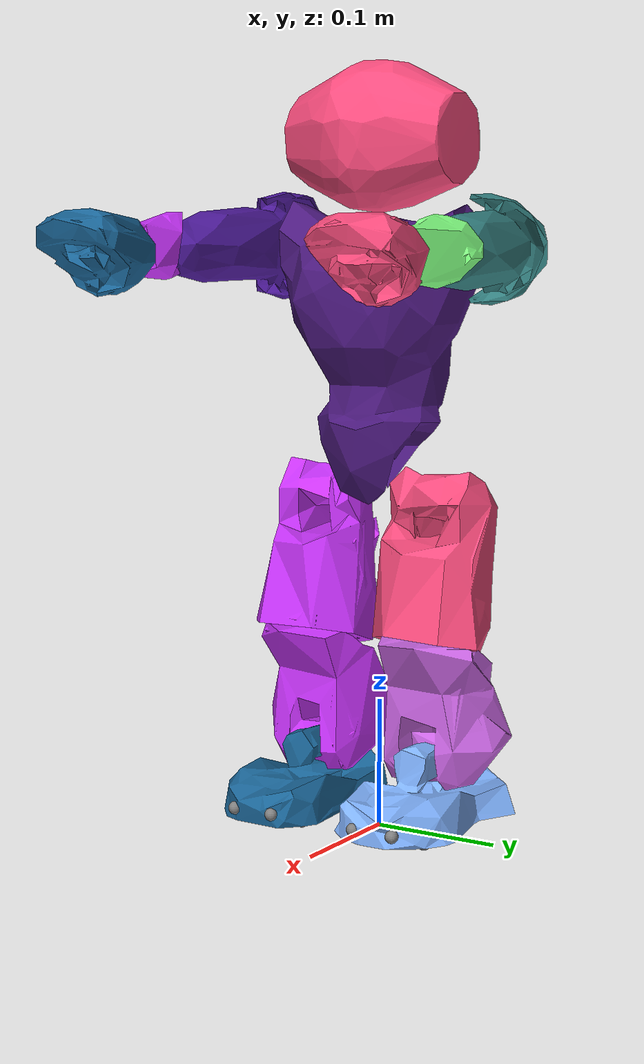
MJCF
<mujoco model="NaoH25V50">
  <compiler angle="radian" meshdir="meshes/"/>

  <!-- https://github.com/HULKs/hulk/blob/main/webots/protos/NAO.proto  Could be useful later -->

<default>
    <light castshadow="false" diffuse="1 1 1"/>
    <joint damping="1" armature="0.1"/>

    <default class="collision_1">
      <geom rgba="1 0 0 0.5" margin="0.000" contype="2" conaffinity="1"/>
    </default>

    <default class="collision_2">
      <geom rgba="1 0 0 0.5" margin="0.000" contype="4" conaffinity="1"/>
    </default>

    <default class="collision_3">
      <geom rgba="1 0 0 0.5" margin="0.000" contype="8" conaffinity="1"/>
    </default>

    <default class="collision_4">
      <geom rgba="1 0 0 0.5" margin="0.000" contype="16" conaffinity="1"/>
    </default>

    <default class="visual">
      <geom rgba="0 0 1 0.5" margin="0.000" contype="0" conaffinity="0"/>
    </default>

</default>

  <asset>
    <mesh name="HeadYaw" file="HeadYaw.obj" scale="0.1 0.1 0.1"/>
    <mesh name="HeadYaw_0.10" file="HeadYaw_0.10.stl" scale="0.1 0.1 0.1"/>

    <mesh name="HeadPitch" file="HeadPitch.obj" scale="0.1 0.1 0.1"/>
    <mesh name="HeadPitch_0.10" file="HeadPitch_0.10.stl" scale="0.1 0.1 0.1"/>

    <mesh name="LHipYawPitch" file="LHipYawPitch.obj" scale="0.1 0.1 0.1"/>
    <mesh name="LHipYawPitch_0.10" file="LHipYawPitch_0.10.stl" scale="0.1 0.1 0.1"/>

    <mesh name="LHipRoll" file="LHipRoll.obj" scale="0.1 0.1 0.1"/>
    <mesh name="LHipRoll_0.10" file="LHipRoll_0.10.stl" scale="0.1 0.1 0.1"/>

    <mesh name="LHipPitch" file="LHipPitch.obj" scale="0.1 0.1 0.1"/>
    <mesh name="LHipPitch_0.10" file="LHipPitch_0.10.stl" scale="0.1 0.1 0.1"/>

    <mesh name="LKneePitch" file="LKneePitch.obj" scale="0.1 0.1 0.1"/>
    <mesh name="LKneePitch_0.10" file="LKneePitch_0.10.stl" scale="0.1 0.1 0.1"/>

    <mesh name="LAnklePitch" file="LAnklePitch.obj" scale="0.1 0.1 0.1"/>
    <mesh name="LAnklePitch_0.10" file="LAnklePitch_0.10.stl" scale="0.1 0.1 0.1"/>

    <mesh name="LAnkleRoll" file="LAnkleRoll.obj" scale="0.1 0.1 0.1"/>
    <mesh name="LAnkleRoll_0.10" file="LAnkleRoll_0.10.stl" scale="0.1 0.1 0.1"/>

    <mesh name="RHipYawPitch" file="RHipYawPitch.obj" scale="0.1 0.1 0.1"/>
    <mesh name="RHipYawPitch_0.10" file="RHipYawPitch_0.10.stl" scale="0.1 0.1 0.1"/>

    <mesh name="RHipRoll" file="RHipRoll.obj" scale="0.1 0.1 0.1"/>
    <mesh name="RHipRoll_0.10" file="RHipRoll_0.10.stl" scale="0.1 0.1 0.1"/>

    <mesh name="RHipPitch" file="RHipPitch.obj" scale="0.1 0.1 0.1"/>
    <mesh name="RHipPitch_0.10" file="RHipPitch_0.10.stl" scale="0.1 0.1 0.1"/>

    <mesh name="RKneePitch" file="RKneePitch.obj" scale="0.1 0.1 0.1"/>
    <mesh name="RKneePitch_0.10" file="RKneePitch_0.10.stl" scale="0.1 0.1 0.1"/>

    <mesh name="RAnklePitch" file="RAnklePitch.obj" scale="0.1 0.1 0.1"/>
    <mesh name="RAnklePitch_0.10" file="RAnklePitch_0.10.stl" scale="0.1 0.1 0.1"/>

    <mesh name="RAnkleRoll" file="RAnkleRoll.obj" scale="0.1 0.1 0.1"/>
    <mesh name="RAnkleRoll_0.10" file="RAnkleRoll_0.10.stl" scale="0.1 0.1 0.1"/>

    <mesh name="Torso" file="Torso.obj" scale="0.1 0.1 0.1"/>
    <mesh name="Torso_0.10" file="Torso_0.10.stl" scale="0.1 0.1 0.1"/>

    <mesh name="LShoulderPitch" file="LShoulderPitch.obj" scale="0.1 0.1 0.1"/>
    <mesh name="LShoulderPitch_0.10" file="LShoulderPitch_0.10.stl" scale="0.1 0.1 0.1"/>

    <mesh name="LShoulderRoll" file="LShoulderRoll.obj" scale="0.1 0.1 0.1"/>
    <mesh name="LShoulderRoll_0.10" file="LShoulderRoll_0.10.stl" scale="0.1 0.1 0.1"/>

    <mesh name="LElbowRoll" file="LElbowRoll.obj" scale="0.1 0.1 0.1"/>
    <mesh name="LElbowRoll_0.10" file="LElbowRoll_0.10.stl" scale="0.1 0.1 0.1"/>

    <mesh name="LWristYaw" file="LWristYaw.obj" scale="0.1 0.1 0.1"/>
    <mesh name="LWristYaw_0.10" file="LWristYaw_0.10.stl" scale="0.1 0.1 0.1"/>

    <mesh name="RShoulderPitch" file="RShoulderPitch.obj" scale="0.1 0.1 0.1"/>
    <mesh name="RShoulderPitch_0.10" file="RShoulderPitch_0.10.stl" scale="0.1 0.1 0.1"/>

    <mesh name="RShoulderRoll" file="RShoulderRoll.obj" scale="0.1 0.1 0.1"/>
    <mesh name="RShoulderRoll_0.10" file="RShoulderRoll_0.10.stl" scale="0.1 0.1 0.1"/>

    <mesh name="RElbowRoll" file="RElbowRoll.obj" scale="0.1 0.1 0.1"/>
    <mesh name="RElbowRoll_0.10" file="RElbowRoll_0.10.stl" scale="0.1 0.1 0.1"/>

    <mesh name="RWristYaw" file="RWristYaw.obj" scale="0.1 0.1 0.1"/>
    <mesh name="RWristYaw_0.10" file="RWristYaw_0.10.stl" scale="0.1 0.1 0.1"/>

    <mesh name="RFinger13" file="RFinger13.obj" scale="0.1 0.1 0.1"/>
    <mesh name="RFinger13_0.10" file="RFinger13_0.10.stl" scale="0.1 0.1 0.1"/>

    <mesh name="RFinger12" file="RFinger12.obj" scale="0.1 0.1 0.1"/>
    <mesh name="RFinger12_0.10" file="RFinger12_0.10.stl" scale="0.1 0.1 0.1"/>

    <mesh name="LFinger21" file="LFinger21.obj" scale="0.1 0.1 0.1"/>
    <mesh name="LFinger21_0.10" file="LFinger21_0.10.stl" scale="0.1 0.1 0.1"/>

    <mesh name="LFinger13" file="LFinger13.obj" scale="0.1 0.1 0.1"/>
    <mesh name="LFinger13_0.10" file="LFinger13_0.10.stl" scale="0.1 0.1 0.1"/>

    <mesh name="LFinger11" file="LFinger11.obj" scale="0.1 0.1 0.1"/>
    <mesh name="LFinger11_0.10" file="LFinger11_0.10.stl" scale="0.1 0.1 0.1"/>

    <mesh name="RFinger22" file="RFinger22.obj" scale="0.1 0.1 0.1"/>
    <mesh name="RFinger22_0.10" file="RFinger22_0.10.stl" scale="0.1 0.1 0.1"/>

    <mesh name="LFinger22" file="LFinger22.obj" scale="0.1 0.1 0.1"/>
    <mesh name="LFinger22_0.10" file="LFinger22_0.10.stl" scale="0.1 0.1 0.1"/>

    <mesh name="RFinger21" file="RFinger21.obj" scale="0.1 0.1 0.1"/>
    <mesh name="RFinger21_0.10" file="RFinger21_0.10.stl" scale="0.1 0.1 0.1"/>

    <mesh name="LFinger12" file="LFinger12.obj" scale="0.1 0.1 0.1"/>
    <mesh name="LFinger12_0.10" file="LFinger12_0.10.stl" scale="0.1 0.1 0.1"/>

    <mesh name="RFinger23" file="RFinger23.obj" scale="0.1 0.1 0.1"/>
    <mesh name="RFinger23_0.10" file="RFinger23_0.10.stl" scale="0.1 0.1 0.1"/>

    <mesh name="RFinger11" file="RFinger11.obj" scale="0.1 0.1 0.1"/>
    <mesh name="RFinger11_0.10" file="RFinger11_0.10.stl" scale="0.1 0.1 0.1"/>

    <mesh name="LFinger23" file="LFinger23.obj" scale="0.1 0.1 0.1"/>
    <mesh name="LFinger23_0.10" file="LFinger23_0.10.stl" scale="0.1 0.1 0.1"/>

    <mesh name="LThumb1" file="LThumb1.obj" scale="0.1 0.1 0.1"/>
    <mesh name="LThumb1_0.10" file="LThumb1_0.10.stl" scale="0.1 0.1 0.1"/>

    <mesh name="RThumb1" file="RThumb1.obj" scale="0.1 0.1 0.1"/>
    <mesh name="RThumb1_0.10" file="RThumb1_0.10.stl" scale="0.1 0.1 0.1"/>

    <mesh name="RThumb2" file="RThumb2.obj" scale="0.1 0.1 0.1"/>
    <mesh name="RThumb2_0.10" file="RThumb2_0.10.stl" scale="0.1 0.1 0.1"/>

    <mesh name="LThumb2" file="LThumb2.obj" scale="0.1 0.1 0.1"/>
    <mesh name="LThumb2_0.10" file="LThumb2_0.10.stl" scale="0.1 0.1 0.1"/>
  </asset>

  <worldbody>
    <light directional="true" diffuse=".8 .8 .8" pos="0 0 10" dir="0 0 -10"/>
    <camera name="side" pos="0 -1 1" xyaxes="1 0 0 0 1 2" mode="trackcom"/>

    <body name="torso" pos="0 0 0.35">
      <site name="accelerometer_site" pos="-0.008 0.00606 0.027"/>
      <site name="gyrometer_site" pos="-0.008 0.006 0.029"/>
      <inertial pos="-0.00413 0 0.04342" mass="1.04956" diaginertia="0.00308361 0.0028835 0.0015924"/>
      <joint type="free"/>
      <geom type="mesh" rgba="0.3 0.1 0.5 1" mesh="Torso_0.10" class="collision_1"/>
      <body name="Neck" pos="0 0 0.1265">
        <inertial pos="-1e-05 0 -0.02742" quat="0.70765 -0.00173495 0.00151894 0.706559" mass="0.07842" diaginertia="1.70396e-05 1.60324e-05 5.53348e-06"/>
        <joint name="HeadYaw" pos="0 0 0" axis="0 0 1" range="-2.08567 2.08567" actuatorfrcrange="-1.547 1.547"/>
        <body name="Head">
          <inertial pos="-0.00112 0 0.05258" quat="0.463877 0.585354 -0.492966 0.446277" mass="0.60533" diaginertia="0.000990592 0.000957952 0.000811033"/>
          <joint name="HeadPitch" pos="0 0 0" axis="0 1 0" range="-0.671952 0.514872" actuatorfrcrange="-1.532 1.532"/>
          <geom type="mesh" rgba="1 0.3 0.5 1" mesh="HeadPitch_0.10" class="collision_2"/>

          <camera name="TopCamera" mode="fixed" pos="0 0 0.1" fovy="72.6"/>
          <camera name="BottomCamera" mode="fixed" pos="0 0 -0.1" fovy="72.6"/>
        </body>
      </body>
      <body name="LPelvis" pos="0 0.05 -0.085">
        <inertial pos="-0.00781 -0.01114 0.02661" quat="0.232303 0.656505 0.182148 0.69416" mass="0.06981" diaginertia="5.16414e-05 4.58792e-05 2.32239e-05"/>
        <joint name="LHipYawPitch" pos="0 0 0" axis="0 0.707107 -0.707107" range="-1.14529 0.740718" actuatorfrcrange="-3.348 3.348"/>
        <body name="LHip">
          <inertial pos="-0.01549 0.00029 -0.00515" quat="0.453959 0.527953 0.574067 0.430853" mass="0.14053" diaginertia="6.08587e-05 5.59269e-05 2.22526e-05"/>
          <joint name="LHipRoll" pos="0 0 0" axis="1 0 0" range="-0.379435 0.79046" actuatorfrcrange="-3.348 3.348"/>
          <body name="LThigh">
            <inertial pos="0.00138 0.00221 -0.05373" quat="0.992078 -0.0228023 -0.123519 -0.00190301" mass="0.38968" diaginertia="0.000524114 0.000465732 0.000286453"/>
            <joint name="LHipPitch" pos="0 0 0" axis="0 1 0" range="-1.53589 0.48398" actuatorfrcrange="-3.023 3.023"/>
            <geom type="mesh" rgba="1 0.3 0.5 1" mesh="LHipPitch_0.10" class="collision_4"/>
            <body name="LTibia" pos="0 0 -0.1">
              <inertial pos="0.00453 0.00225 -0.04936" quat="0.997907 0.0169027 0.0579417 0.0232071" mass="0.30142" diaginertia="0.000449928 0.000388139 0.000181704"/>
              <joint name="LKneePitch" pos="0 0 0" axis="0 1 0" range="-0.0923279 2.11255" actuatorfrcrange="-3.023 3.023"/>
              <geom type="mesh" rgba="0.8 0.4 0.9 1" mesh="LKneePitch_0.10" class="collision_1"/>
              <body name="LAnklePitch" pos="0 0 -0.1029">
                <inertial pos="0.00045 0.00029 0.00685" quat="0.447256 0.548803 0.537287 0.458368" mass="0.13416" diaginertia="6.79494e-05 5.56016e-05 3.14223e-05"/>
                <joint name="LAnklePitch" pos="0 0 0" axis="0 1 0" range="-1.18944 0.922581" actuatorfrcrange="-3.023 3.023"/>
                <body name="l_ankle">
                  <inertial pos="0.0254198 0.00330005 -0.0323906" quat="0.0134363 0.704739 -0.00974782 0.709273" mass="0.171848" diaginertia="0.000412891 0.000353334 8.70025e-05"/>
                  <joint name="LAnkleRoll" pos="0 0 0" axis="1 0 0" range="-0.397761 0.768992" actuatorfrcrange="-3.348 3.348"/>
                  <geom type="mesh" rgba="0.5 0.7 1 1" mesh="LAnkleRoll_0.10" class="collision_2"/>

                  <site name="LFsrFL_site" pos="0.07025 0.0299 -0.046"/>
                  <site name="LFsrFR_site" pos="0.07025 -0.0231 -0.046"/>
                  <site name="LFsrRL_site" pos="-0.03025 0.0299 -0.046"/>
                  <site name="LFsrRR_site" pos="-0.02965 -0.0191 -0.046"/>

                  <site name="BumperLFootLeft_site" pos="0.099 0.0190 -0.0353"/>
                  <site name="BumperLFootRight_site" pos="0.099 -0.0140 -0.0353"/>
                </body>
              </body>
            </body>
          </body>
        </body>
      </body>
      <body name="RPelvis" pos="0 -0.05 -0.085">
        <inertial pos="-0.00781 0.01114 0.02661" quat="-0.286295 0.637526 -0.200888 0.686469" mass="0.06981" diaginertia="6.0003e-05 4.60859e-05 3.15895e-05"/>
        <joint name="RHipYawPitch" pos="0 0 0" axis="0 0.707107 0.707107" range="-1.14529 0.740718" actuatorfrcrange="-3.348 3.348"/>
        <body name="RHip">
          <inertial pos="-0.01549 -0.00029 -0.00515" quat="0.431269 0.573083 0.528698 0.453941" mass="0.14053" diaginertia="6.08554e-05 5.59208e-05 2.2268e-05"/>
          <joint name="RHipRoll" pos="0 0 0" axis="1 0 0" range="-0.79046 0.379435" actuatorfrcrange="-3.348 3.348"/>
          <body name="RThigh">
            <inertial pos="0.00138 -0.00221 -0.05373" quat="0.99203 0.0205489 -0.124311 0.000726212" mass="0.38968" diaginertia="0.000525121 0.000466802 0.000286518"/>
            <joint name="RHipPitch" pos="0 0 0" axis="0 1 0" range="-1.53589 0.48398" actuatorfrcrange="-3.0226 3.0226"/>
            <geom type="mesh" rgba="0.8 0.2 1 1" mesh="RHipPitch_0.10" class="collision_4"/>
            <body name="RTibia" pos="0 0 -0.1">
              <inertial pos="0.00453 -0.00225 -0.04936" quat="0.99698 -0.0149083 0.0724691 -0.0235809" mass="0.30142" diaginertia="0.000452851 0.000387699 0.000177824"/>
              <joint name="RKneePitch" pos="0 0 0" axis="0 1 0" range="-0.0923279 2.11255" actuatorfrcrange="-3.0226 3.0226"/>
              <geom type="mesh" rgba="0.8 0.2 1 1" mesh="RKneePitch_0.10" class="collision_4"/>
              <body name="RAnklePitch" pos="0 0 -0.1029">
                <inertial pos="0.00045 -0.00029 0.00685" quat="0.458219 0.537985 0.54818 0.447332" mass="0.13416" diaginertia="6.79942e-05 5.56532e-05 3.14175e-05"/>
                <joint name="RAnklePitch" pos="0 0 0" axis="0 1 0" range="-1.1863 0.932006" actuatorfrcrange="-3.0226 3.0226"/>
                <body name="r_ankle">
                  <inertial pos="0.0254198 -0.00330005 -0.0323906" quat="-0.0138336 0.704473 0.00894574 0.70954" mass="0.171848" diaginertia="0.000412175 0.000352454 8.68701e-05"/>
                  <joint name="RAnkleRoll" pos="0 0 0" axis="1 0 0" range="-0.768992 0.397761" actuatorfrcrange="-3.348 3.348"/>
                  <geom type="mesh" rgba="0.1 0.4 0.6 1" mesh="RAnkleRoll_0.10" class="collision_3"/>

                  <site name="RFsrFL_site" pos="0.07025 0.0231 -0.046"/>
                  <site name="RFsrFR_site" pos="0.07025 -0.0299 -0.046"/>
                  <site name="RFsrRL_site" pos="-0.03025 0.0191 -0.046"/>
                  <site name="RFsrRR_site" pos="-0.02965 -0.0299 -0.046"/>

                  <site name="BumperRFootLeft_site" pos="0.099 0.0140 -0.0353"/>
                  <site name="BumperRFootRight_site" pos="0.099 -0.0190 -0.0353"/>
                </body>
              </body>
            </body>
          </body>
        </body>
      </body>
      <body name="LShoulder" pos="0 0.098 0.1">
        <inertial pos="-0.00165 -0.02663 0.00014" quat="0.353499 0.572853 -0.442525 0.592494" mass="0.09304" diaginertia="2.02186e-05 1.91002e-05 1.30704e-05"/>
        <joint name="LShoulderPitch" pos="0 0 0" axis="0 1 0" range="-2.08567 2.08567" actuatorfrcrange="-1.329 1.329" ref="-1.5"/>
        <body name="LBicep">
          <inertial pos="0.02455 0.00563 0.0033" quat="0.467645 0.46185 0.492756 0.570257" mass="0.15777" diaginertia="0.00027823 0.000242894 8.25818e-05"/>
          <joint name="LShoulderRoll" pos="0 0 0" axis="0 0 1" range="-0.314159 1.32645" actuatorfrcrange="-1.7835 1.7835"/>
          <geom type="mesh" rgba="0.2 0.5 0.5 1" mesh="LShoulderRoll_0.10" class="collision_4"/>
          <body name="LElbow" pos="0.105 0.015 0">
            <inertial pos="-0.02744 0 -0.00014" quat="-0.000545392 0.711779 -0.000696018 0.702403" mass="0.06483" diaginertia="2.76333e-05 2.66179e-05 5.592e-06"/>
            <joint name="LElbowYaw" pos="0 0 0" axis="1 0 0" range="-2.08567 2.08567" actuatorfrcrange="-1.547 1.547"/>
            <body name="LForeArm">
              <inertial pos="0.02556 0.00281 0.00076" quat="0.481839 0.619088 0.422287 0.454131" mass="0.07761" diaginertia="3.9183e-05 3.6083e-05 2.37632e-05"/>
              <joint name="LElbowRoll" pos="0 0 0" axis="0 0 1" range="-1.54462 -0.0349066" actuatorfrcrange="-1.532 1.532"/>
              <geom type="mesh" rgba="0.5 1 0.5 1" mesh="LElbowRoll_0.10" class="collision_1"/>
              <body name="l_wrist" pos="0.05595 0 0">
                <inertial pos="0.03434 -0.00088 0.00308" quat="0.346526 0.607704 0.329318 0.634165" mass="0.18533" diaginertia="0.000137482 0.000131631 6.85194e-05"/>
                <joint name="LWristYaw" pos="0 0 0" axis="1 0 0" range="-1.82387 1.82387" actuatorfrcrange="-0.4075 0.4075" ref="1.57"/>
                <geom type="mesh" rgba="1 0.3 0.5 1" mesh="LWristYaw_0.10" class="collision_2"/>
                <body name="l_gripper" pos="0.05775 0 -0.01231">
                  <inertial pos="0 0 0" mass="2e-06" diaginertia="1.1e-09 1.1e-09 1.1e-09"/>
                  <joint name="LHand" pos="0 0 0" axis="1 0 0" range="0 1" actuatorfrcrange="-0.292 0.292"/>
                </body>
              </body>
            </body>
          </body>
        </body>
      </body>
      <body name="RShoulder" pos="0 -0.098 0.1">
        <inertial pos="-0.00165 0.02663 0.00014" quat="0.572853 0.353499 -0.592494 0.442525" mass="0.09304" diaginertia="2.02186e-05 1.91002e-05 1.30704e-05"/>
        <joint name="RShoulderPitch" pos="0 0 0" axis="0 1 0" range="-2.08567 2.08567" actuatorfrcrange="-1.329 1.329" ref="-1.5"/>
        <body name="RBicep">
          <inertial pos="0.02455 -0.00563 0.0033" quat="0.556969 0.570609 0.359404 0.484788" mass="0.15777" diaginertia="0.000287934 0.00025515 8.56154e-05"/>
          <joint name="RShoulderRoll" pos="0 0 0" axis="0 0 1" range="-1.32645 0.314159" actuatorfrcrange="-1.783 1.783"/>
          <geom type="mesh" rgba="0.3 0.1 0.6 1" mesh="RShoulderRoll_0.10" class="collision_4"/>
          <body name="RElbow" pos="0.105 -0.015 0">
            <inertial pos="-0.02744 0 -0.00014" quat="-0.000545392 0.711779 -0.000696018 0.702403" mass="0.06483" diaginertia="2.76333e-05 2.66179e-05 5.592e-06"/>
            <joint name="RElbowYaw" pos="0 0 0" axis="1 0 0" range="-2.08567 2.08567" actuatorfrcrange="-1.547 1.547"/>
            <body name="RForeArm">
              <inertial pos="0.02556 -0.00281 0.00076" quat="0.453039 0.428011 0.593606 0.509111" mass="0.07761" diaginertia="3.92326e-05 3.59586e-05 2.39457e-05"/>
              <joint name="RElbowRoll" pos="0 0 0" axis="0 0 1" range="0.0349066 1.54462" actuatorfrcrange="-1.532 1.532"/>
              <geom type="mesh" rgba="0.8 0.2 1 1" mesh="RElbowRoll_0.10" class="collision_1"/>
              <body name="r_wrist" pos="0.05595 0 0">
                <inertial pos="0.03434 0.00088 0.00308" quat="0.422432 0.617987 0.303847 0.589339" mass="0.18533" diaginertia="0.000139307 0.000131711 6.66137e-05"/>
                <joint name="RWristYaw" pos="0 0 0" axis="1 0 0" range="-1.82387 1.82387" actuatorfrcrange="-0.4075 0.4075" ref="-1.57"/>
                <geom type="mesh" rgba="0.1 0.4 0.6 1" mesh="RWristYaw_0.10" class="collision_2"/>
                <body name="r_gripper" pos="0.05775 0 -0.01213">
                  <inertial pos="0 0 0" mass="2e-06" diaginertia="1.1e-09 1.1e-09 1.1e-09"/>
                  <joint name="RHand" pos="0 0 0" axis="1 0 0" range="0 1" actuatorfrcrange="-0.292 0.292"/>
                </body>
              </body>
            </body>
          </body>
        </body>
      </body>
    </body>
  </worldbody>

<actuator>
  <position name="HeadYaw_position" joint="HeadYaw" kp="20" kv="0.4"/>
  <position name="HeadPitch_position" joint="HeadPitch" kp="40" kv="0.8"/>

  <position name="LShoulderPitch_position" joint="LShoulderPitch" kp="50" kv="0.7"/>
  <position name="LShoulderRoll_position" joint="LShoulderRoll" kp="60" kv="0.6"/>
  <position name="LElbowYaw_position" joint="LElbowYaw" kp="40" kv="0.5"/>
  <position name="LElbowRoll_position" joint="LElbowRoll" kp="60" kv="0.6"/>

  <position name="RShoulderPitch_position" joint="RShoulderPitch" kp="50" kv="0.7"/>
  <position name="RShoulderRoll_position" joint="RShoulderRoll" kp="60" kv="0.6"/>
  <position name="RElbowYaw_position" joint="RElbowYaw" kp="40" kv="0.5"/>
  <position name="RElbowRoll_position" joint="RElbowRoll" kp="60" kv="0.6"/>

  <position name="LHipYawPitch_position" joint="LHipYawPitch" kp="80" kv="1.5"/>
  <position name="LHipRoll_position" joint="LHipRoll" kp="90" kv="1.5"/>
  <position name="LHipPitch_position" joint="LHipPitch" kp="70" kv="1.5"/>
  <position name="LKneePitch_position" joint="LKneePitch" kp="70" kv="1.5"/>
  <position name="LAnklePitch_position" joint="LAnklePitch" kp="70" kv="1.5"/>
  <position name="LAnkleRoll_position" joint="LAnkleRoll" kp="90" kv="1.5"/>

  <position name="RHipYawPitch_position" joint="RHipYawPitch" kp="80" kv="1.5"/>
  <position name="RHipRoll_position" joint="RHipRoll" kp="90" kv="1.5"/>
  <position name="RHipPitch_position" joint="RHipPitch" kp="70" kv="1.5"/>
  <position name="RKneePitch_position" joint="RKneePitch" kp="70" kv="1.5"/>
  <position name="RAnklePitch_position" joint="RAnklePitch" kp="70" kv="1.5"/>
  <position name="RAnkleRoll_position" joint="RAnkleRoll" kp="90" kv="1.5"/>

  <position name="LHand_position" joint="LHand" kp="10" kv="0.2"/>
  <position name="LWristYaw_position" joint="LWristYaw" kp="15" kv="0.3"/>

  <position name="RHand_position" joint="RHand" kp="10" kv="0.2"/>
  <position name="RWristYaw_position" joint="RWristYaw" kp="15" kv="0.3"/>
</actuator>

  <sensor>
    <jointpos name="HeadYaw_pos" joint="HeadYaw" noise="0.002"/>
    <jointpos name="HeadPitch_pos" joint="HeadPitch" noise="0.002"/>

    <jointpos name="LShoulderPitch_pos" joint="LShoulderPitch" noise="0.002"/>
    <jointpos name="LShoulderRoll_pos" joint="LShoulderRoll" noise="0.002"/>
    <jointpos name="LElbowYaw_pos" joint="LElbowYaw" noise="0.002"/>
    <jointpos name="LElbowRoll_pos" joint="LElbowRoll" noise="0.002"/>
    <jointpos name="LWristYaw_pos" joint="LWristYaw" noise="0.002"/>
    <jointpos name="LHand_pos" joint="LHand" noise="0.002"/>

    <jointpos name="RShoulderPitch_pos" joint="RShoulderPitch" noise="0.002"/>
    <jointpos name="RShoulderRoll_pos" joint="RShoulderRoll" noise="0.002"/>
    <jointpos name="RElbowYaw_pos" joint="RElbowYaw" noise="0.002"/>
    <jointpos name="RElbowRoll_pos" joint="RElbowRoll" noise="0.002"/>
    <jointpos name="RWristYaw_pos" joint="RWristYaw" noise="0.002"/>
    <jointpos name="RHand_pos" joint="RHand" noise="0.002"/>

    <jointpos name="LHipYawPitch_pos" joint="LHipYawPitch" noise="0.002"/>
    <jointpos name="LHipRoll_pos" joint="LHipRoll" noise="0.002"/>
    <jointpos name="LHipPitch_pos" joint="LHipPitch" noise="0.002"/>
    <jointpos name="LKneePitch_pos" joint="LKneePitch" noise="0.002"/>
    <jointpos name="LAnklePitch_pos" joint="LAnklePitch" noise="0.002"/>
    <jointpos name="LAnkleRoll_pos" joint="LAnkleRoll" noise="0.002"/>

    <jointpos name="RHipYawPitch_pos" joint="RHipYawPitch" noise="0.002"/>
    <jointpos name="RHipRoll_pos" joint="RHipRoll" noise="0.002"/>
    <jointpos name="RHipPitch_pos" joint="RHipPitch" noise="0.002"/>
    <jointpos name="RKneePitch_pos" joint="RKneePitch" noise="0.002"/>
    <jointpos name="RAnklePitch_pos" joint="RAnklePitch" noise="0.002"/>
    <jointpos name="RAnkleRoll_pos" joint="RAnkleRoll" noise="0.002"/>

    <accelerometer name="accelerometer" noise="0.05" site="accelerometer_site"/>
    <gyro name="gyro" noise="0.02" site="gyrometer_site"/>
    <magnetometer name="compass" noise="0.001" site="gyrometer_site"/>

    <force name="LFsrFL" site="LFsrFL_site"/>
    <force name="LFsrFR" site="LFsrFR_site"/>
    <force name="LFsrRL" site="LFsrRL_site"/>
    <force name="LFsrRR" site="LFsrRR_site"/>

    <force name="RFsrFL" site="RFsrFL_site"/>
    <force name="RFsrFR" site="RFsrFR_site"/>
    <force name="RFsrRL" site="RFsrRL_site"/>
    <force name="RFsrRR" site="RFsrRR_site"/>

    <force name="LFootForce" site="LFsrFL_site"/>
    <torque name="LFootTorque" site="LFsrFL_site"/>
    <force name="RFootForce" site="RFsrFL_site"/>
    <torque name="RFootTorque" site="RFsrFL_site"/>

    <touch name="BumperLFootLeft" site="BumperLFootLeft_site"/>
    <touch name="BumperLFootRight" site="BumperLFootRight_site"/>
    <touch name="BumperRFootLeft" site="BumperRFootLeft_site"/>
    <touch name="BumperRFootRight" site="BumperRFootRight_site"/>
  </sensor>

</mujoco>
